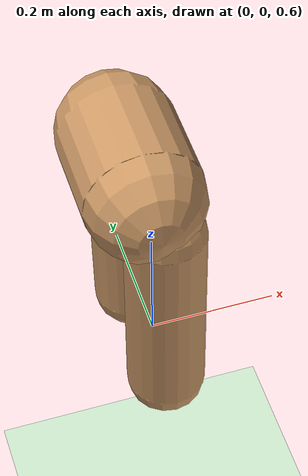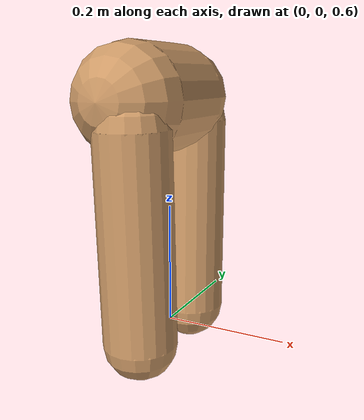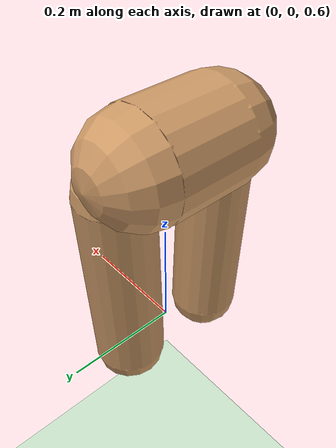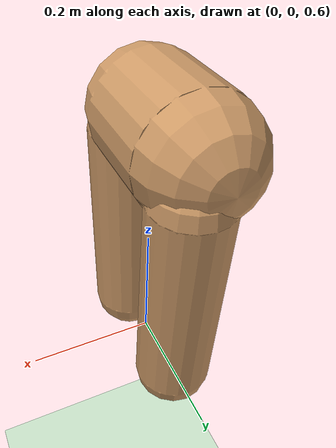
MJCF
<mujoco model="humanoid">
    <compiler angle="degree" inertiafromgeom="true"/>
    <default>
        <joint armature="1" damping="1" limited="true"/>
        <geom conaffinity="1" condim="1" contype="1" margin="0.001" material="geom" rgba="0.8 0.6 .4 1"/>
        <motor ctrllimited="true" ctrlrange="-.4 .4"/>
    </default>
    <option integrator="RK4" iterations="50" solver="PGS" timestep="0.003">
    </option>
    <size nkey="5" nuser_geom="1"/>
    <visual>
        <map fogend="5" fogstart="3"/>
    </visual>
    <asset>
        <texture builtin="gradient" height="100" rgb1=".4 .5 .6" rgb2="0 0 0" type="skybox" width="100"/>
        <texture builtin="flat" height="1278" mark="cross" markrgb="1 1 1" name="texgeom" random="0.01" rgb1="0.8 0.6 0.4" rgb2="0.8 0.6 0.4" type="cube" width="127"/>
        <texture builtin="checker" height="100" name="texplane" rgb1="0 0 0" rgb2="0.8 0.8 0.8" type="2d" width="100"/>
        <material name="MatPlane" reflectance="0.5" shininess="1" specular="1" texrepeat="60 60" texture="texplane"/>
        <material name="geom" texture="texgeom" texuniform="true"/>
    </asset>
    <worldbody>
        <light cutoff="100" diffuse="1 1 1" dir="-0 0 -1.3" directional="true" exponent="1" pos="0 0 1.3" specular=".1 .1 .1"/>
        <geom condim="3" friction="1 .1 .1" material="MatPlane" name="floor" pos="0 0 0" rgba="0.8 0.9 0.8 1" size="20 20 0.125" type="plane"/>
        <body name="torso" pos="0 0 1.4">
            <body name="lwaist" pos="-.01 0 -0.260" quat="1.000 0 -0.002 0">
                <body name="pelvis" pos="0 0 -0.165" quat="1.000 0 -0.002 0">
                    <geom fromto="-.02 -.07 0 -.02 .07 0" name="butt" size="0.09" type="capsule"/>
                    <body name="right_thigh" pos="0 -0.1 -0.04">
                        <joint armature="0.01" axis="1 0 0" damping="5" name="right_hip_x" pos="0 0 0" range="-25 5" stiffness="10" type="hinge"/>
                        <joint armature="0.01" axis="0 0 1" damping="5" name="right_hip_z" pos="0 0 0" range="-60 35" stiffness="10" type="hinge"/>
                        <joint armature="0.0080" axis="0 1 0" damping="5" name="right_hip_y" pos="0 0 0" range="-110 20" stiffness="20" type="hinge"/>
                        <geom fromto="0 0 0 0 0.01 -.34" name="right_thigh1" size="0.06" type="capsule"/>
                    </body>
                    <body name="left_thigh" pos="0 0.1 -0.04">
                        <joint armature="0.01" axis="-1 0 0" damping="5" name="left_hip_x" pos="0 0 0" range="-25 5" stiffness="10" type="hinge"/>
                        <joint armature="0.01" axis="0 0 -1" damping="5" name="left_hip_z" pos="0 0 0" range="-60 35" stiffness="10" type="hinge"/>
                        <joint armature="0.01" axis="0 1 0" damping="5" name="left_hip_y" pos="0 0 0" range="-120 20" stiffness="20" type="hinge"/>
                        <geom fromto="0 0 0 0 -0.01 -.34" name="left_thigh1" size="0.06" type="capsule"/>
                    </body>
                </body>
            </body>
        </body>
    </worldbody>
    <tendon>
        <fixed name="left_hipknee">
            <joint coef="-1" joint="left_hip_y"/>
            <joint coef="1" joint="left_knee"/>
        </fixed>
        <fixed name="right_hipknee">
            <joint coef="-1" joint="right_hip_y"/>
            <joint coef="1" joint="right_knee"/>
        </fixed>
    </tendon>

    <actuator>
        <motor gear="400" joint="right_hip_x" name="right_hip_x"/>
        <motor gear="400" joint="right_hip_z" name="right_hip_z"/>
        <motor gear="400" joint="right_hip_y" name="right_hip_y"/>
        <motor gear="400" joint="left_hip_x" name="left_hip_x"/>
        <motor gear="400" joint="left_hip_z" name="left_hip_z"/>
        <motor gear="400" joint="left_hip_y" name="left_hip_y"/>
    </actuator>
  <sensor>
  </sensor>
</mujoco>
